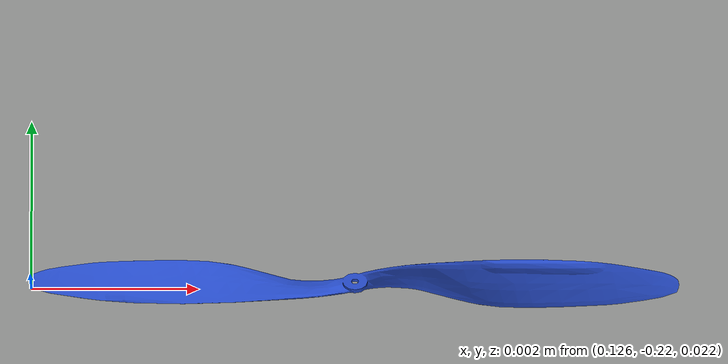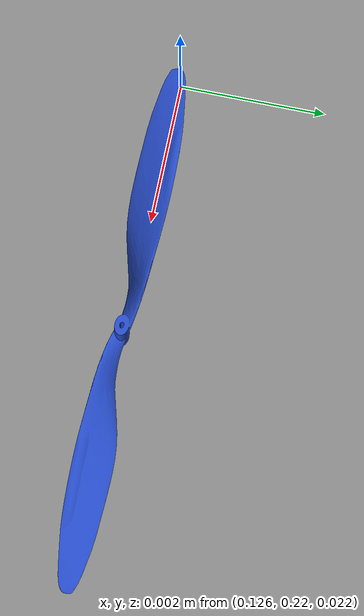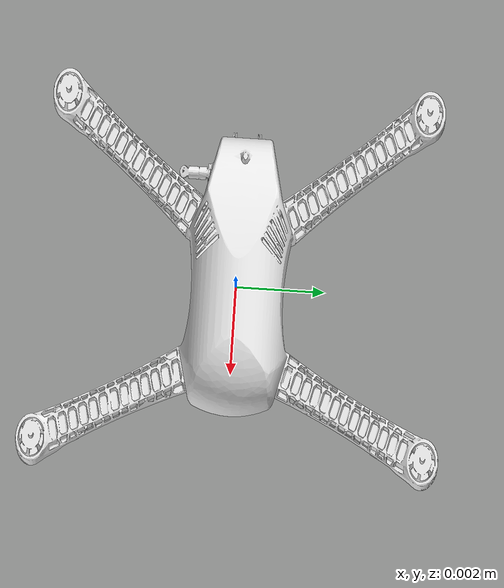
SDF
<!-- DO NOT EDIT: Generated from iris_virtual.sdf.jinja -->
<sdf version='1.6'>
  <model name='iris_virtual'>
    <link name='base_link'>
      <pose>0 0 0 0 0 0</pose>
      <inertial>
        <pose>0 0 0 0 0 0</pose>
        <mass>1.5</mass>
        <inertia>
          <ixx>0.029125</ixx>
          <ixy>0</ixy>
          <ixz>0</ixz>
          <iyy>0.029125</iyy>
          <iyz>0</iyz>
          <izz>0.055225</izz>
        </inertia>
      </inertial>
      <sensor name="camera" type="camera">
        <camera name="__default__">
          <horizontal_fov>1.047</horizontal_fov>
          <image>
            <width>320</width>
            <height>240</height>
          </image>
          <clip>
            <near>0.1</near>
            <far>100</far>
          </clip>
          <lens>
            <type>custom</type>
            <custom_function>
              <c1>1.05</c1>
              <c2>4</c2>
              <f>1</f>
              <fun>tan</fun>
            </custom_function>
            <scale_to_hfov>1</scale_to_hfov>
            <cutoff_angle>3.1415</cutoff_angle>
            <env_texture_size>1080</env_texture_size>
          </lens>
        </camera>
        <always_on>1</always_on>
        <update_rate>30</update_rate>
        <visualize>1</visualize>
        <plugin name="camera_plugin" filename="libgazebo_ros_camera.so">
          <robotNamespace/>
          <alwaysOn>true</alwaysOn>
          <imageTopicName>image_raw</imageTopicName>
          <cameraInfoTopicName>camera_info</cameraInfoTopicName>
          <updateRate>30.0</updateRate>
          <cameraName>usb_cam</cameraName>
          <frameName>/robot_camera_link</frameName>
          <CxPrime>320.5</CxPrime>
          <Cx>320.5</Cx>
          <Cy>240.5</Cy>
          <hackBaseline>0</hackBaseline>
          <focalLength>277.191356</focalLength>
          <distortionK1>0.0</distortionK1>
          <distortionK2>0.0</distortionK2>
          <distortionK3>0.0</distortionK3>
          <distortionT1>0.0</distortionT1>
          <distortionT2>0.0</distortionT2>
        </plugin>
      </sensor>
      <collision name='base_link_inertia_collision'>
        <pose>0 0 0 0 0 0</pose>
        <geometry>
          <box>
            <size>0.47 0.47 0.11</size>
          </box>
        </geometry>
        <surface>
          <contact>
            <ode>
              <min_depth>0.001</min_depth>
              <max_vel>0</max_vel>
            </ode>
          </contact>
          <friction>
            <ode/>
          </friction>
        </surface>
      </collision>
      <visual name='base_link_inertia_visual'>
        <pose>0 0 0 0 0 0</pose>
        <geometry>
          <mesh>
            <scale>0.1 0.1 0.1</scale>
            <uri>model://iris_virtual/meshes/iris.stl</uri>
          </mesh>
        </geometry>
        <material>
          <script>
            <name>Gazebo/White</name>
            <uri>file://media/materials/scripts/gazebo.material</uri>
          </script>
        </material>
      </visual>
      <gravity>1</gravity>
      <velocity_decay/>
    </link>
    <link name='/imu_link'>
      <pose>0 0 0 0 0 0</pose>
      <inertial>
        <pose>0 0 0 0 0 0</pose>
        <mass>0.015</mass>
        <inertia>
          <ixx>1e-05</ixx>
          <ixy>0</ixy>
          <ixz>0</ixz>
          <iyy>1e-05</iyy>
          <iyz>0</iyz>
          <izz>1e-05</izz>
        </inertia>
      </inertial>
    </link>
    <joint name='/imu_joint' type='revolute'>
      <child>/imu_link</child>
      <parent>base_link</parent>
      <axis>
        <xyz>1 0 0</xyz>
        <limit>
          <lower>0</lower>
          <upper>0</upper>
          <effort>0</effort>
          <velocity>0</velocity>
        </limit>
        <dynamics>
          <spring_reference>0</spring_reference>
          <spring_stiffness>0</spring_stiffness>
        </dynamics>
        <use_parent_model_frame>1</use_parent_model_frame>
      </axis>
    </joint>
    <link name='rotor_0'>
      <pose>0.13 -0.22 0.023 0 0 0</pose>
      <inertial>
        <pose>0 0 0 0 0 0</pose>
        <mass>0.005</mass>
        <inertia>
          <ixx>9.75e-07</ixx>
          <ixy>0</ixy>
          <ixz>0</ixz>
          <iyy>0.000273104</iyy>
          <iyz>0</iyz>
          <izz>0.000274004</izz>
        </inertia>
      </inertial>
      <collision name='rotor_0_collision'>
        <pose>0 0 0 0 0 0</pose>
        <geometry>
          <cylinder>
            <length>0.005</length>
            <radius>0.128</radius>
          </cylinder>
        </geometry>
        <surface>
          <contact>
            <ode/>
          </contact>
          <friction>
            <ode/>
          </friction>
        </surface>
      </collision>
      <visual name='rotor_0_visual'>
        <pose>0 0 0 0 0 0</pose>
        <geometry>
          <mesh>
            <scale>0.1 0.1 0.1</scale>
            <uri>model://iris_virtual/meshes/iris_prop_ccw.dae</uri>
          </mesh>
        </geometry>
        <material>
          <script>
            <name>Gazebo/Blue</name>
            <uri>file://media/materials/scripts/gazebo.material</uri>
          </script>
        </material>
      </visual>
      <gravity>1</gravity>
      <velocity_decay/>
    </link>
    <joint name='rotor_0_joint' type='revolute'>
      <child>rotor_0</child>
      <parent>base_link</parent>
      <axis>
        <xyz>0 0 1</xyz>
        <limit>
          <lower>-1e+16</lower>
          <upper>1e+16</upper>
        </limit>
        <dynamics>
          <spring_reference>0</spring_reference>
          <spring_stiffness>0</spring_stiffness>
        </dynamics>
        <use_parent_model_frame>1</use_parent_model_frame>
      </axis>
    </joint>
    <link name='rotor_1'>
      <pose>-0.13 0.2 0.023 0 0 0</pose>
      <inertial>
        <pose>0 0 0 0 0 0</pose>
        <mass>0.005</mass>
        <inertia>
          <ixx>9.75e-07</ixx>
          <ixy>0</ixy>
          <ixz>0</ixz>
          <iyy>0.000273104</iyy>
          <iyz>0</iyz>
          <izz>0.000274004</izz>
        </inertia>
      </inertial>
      <collision name='rotor_1_collision'>
        <pose>0 0 0 0 0 0</pose>
        <geometry>
          <cylinder>
            <length>0.005</length>
            <radius>0.128</radius>
          </cylinder>
        </geometry>
        <surface>
          <contact>
            <ode/>
          </contact>
          <friction>
            <ode/>
          </friction>
        </surface>
      </collision>
      <visual name='rotor_1_visual'>
        <pose>0 0 0 0 0 0</pose>
        <geometry>
          <mesh>
            <scale>0.1 0.1 0.1</scale>
            <uri>model://iris_virtual/meshes/iris_prop_ccw.dae</uri>
          </mesh>
        </geometry>
        <material>
          <script>
            <name>Gazebo/White</name>
            <uri>file://media/materials/scripts/gazebo.material</uri>
          </script>
        </material>
      </visual>
      <gravity>1</gravity>
      <velocity_decay/>
    </link>
    <joint name='rotor_1_joint' type='revolute'>
      <child>rotor_1</child>
      <parent>base_link</parent>
      <axis>
        <xyz>0 0 1</xyz>
        <limit>
          <lower>-1e+16</lower>
          <upper>1e+16</upper>
        </limit>
        <dynamics>
          <spring_reference>0</spring_reference>
          <spring_stiffness>0</spring_stiffness>
        </dynamics>
        <use_parent_model_frame>1</use_parent_model_frame>
      </axis>
    </joint>
    <link name='rotor_2'>
      <pose>0.13 0.22 0.023 0 0 0</pose>
      <inertial>
        <pose>0 0 0 0 0 0</pose>
        <mass>0.005</mass>
        <inertia>
          <ixx>9.75e-07</ixx>
          <ixy>0</ixy>
          <ixz>0</ixz>
          <iyy>0.000273104</iyy>
          <iyz>0</iyz>
          <izz>0.000274004</izz>
        </inertia>
      </inertial>
      <collision name='rotor_2_collision'>
        <pose>0 0 0 0 0 0</pose>
        <geometry>
          <cylinder>
            <length>0.005</length>
            <radius>0.128</radius>
          </cylinder>
        </geometry>
        <surface>
          <contact>
            <ode/>
          </contact>
          <friction>
            <ode/>
          </friction>
        </surface>
      </collision>
      <visual name='rotor_2_visual'>
        <pose>0 0 0 0 0 0</pose>
        <geometry>
          <mesh>
            <scale>0.1 0.1 0.1</scale>
            <uri>model://iris_virtual/meshes/iris_prop_cw.dae</uri>
          </mesh>
        </geometry>
        <material>
          <script>
            <name>Gazebo/Blue</name>
            <uri>file://media/materials/scripts/gazebo.material</uri>
          </script>
        </material>
      </visual>
      <gravity>1</gravity>
      <velocity_decay/>
    </link>
    <joint name='rotor_2_joint' type='revolute'>
      <child>rotor_2</child>
      <parent>base_link</parent>
      <axis>
        <xyz>0 0 1</xyz>
        <limit>
          <lower>-1e+16</lower>
          <upper>1e+16</upper>
        </limit>
        <dynamics>
          <spring_reference>0</spring_reference>
          <spring_stiffness>0</spring_stiffness>
        </dynamics>
        <use_parent_model_frame>1</use_parent_model_frame>
      </axis>
    </joint>
    <link name='rotor_3'>
      <pose>-0.13 -0.2 0.023 0 0 0</pose>
      <inertial>
        <pose>0 0 0 0 0 0</pose>
        <mass>0.005</mass>
        <inertia>
          <ixx>9.75e-07</ixx>
          <ixy>0</ixy>
          <ixz>0</ixz>
          <iyy>0.000273104</iyy>
          <iyz>0</iyz>
          <izz>0.000274004</izz>
        </inertia>
      </inertial>
      <collision name='rotor_3_collision'>
        <pose>0 0 0 0 0 0</pose>
        <geometry>
          <cylinder>
            <length>0.005</length>
            <radius>0.128</radius>
          </cylinder>
        </geometry>
        <surface>
          <contact>
            <ode/>
          </contact>
          <friction>
            <ode/>
          </friction>
        </surface>
      </collision>
      <visual name='rotor_3_visual'>
        <pose>0 0 0 0 0 0</pose>
        <geometry>
          <mesh>
            <scale>0.1 0.1 0.1</scale>
            <uri>model://iris_virtual/meshes/iris_prop_cw.dae</uri>
          </mesh>
        </geometry>
        <material>
          <script>
            <name>Gazebo/White</name>
            <uri>file://media/materials/scripts/gazebo.material</uri>
          </script>
        </material>
      </visual>
      <gravity>1</gravity>
      <velocity_decay/>
    </link>
    <joint name='rotor_3_joint' type='revolute'>
      <child>rotor_3</child>
      <parent>base_link</parent>
      <axis>
        <xyz>0 0 1</xyz>
        <limit>
          <lower>-1e+16</lower>
          <upper>1e+16</upper>
        </limit>
        <dynamics>
          <spring_reference>0</spring_reference>
          <spring_stiffness>0</spring_stiffness>
        </dynamics>
        <use_parent_model_frame>1</use_parent_model_frame>
      </axis>
    </joint>
    <plugin name="iris_virtual_pose" filename="libgazebo_model_pose.so">
      <topic>/qualisys/hb1/pose</topic>
    </plugin>
  </model>
</sdf>
